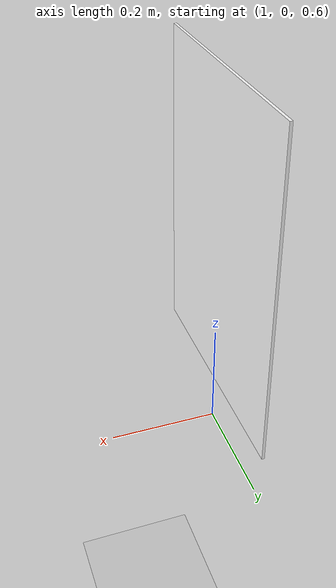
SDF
<?xml version="1.0"?>
<sdf version="1.6">
  <world name="default">
    <!-- physics engine -->
    <physics type="ode">
      <max_step_size>0.001</max_step_size>
      <real_time_factor>1</real_time_factor>
      <real_time_update_rate>1000</real_time_update_rate>
      <magnetic_field>34 0 -36</magnetic_field>
      <gravity>0 0 -9.8</gravity>
    </physics>

    <!-- coordinate -->
    <spherical_coordinates>
      <surface_model>EARTH_WGS84</surface_model>
      <latitude_deg>0</latitude_deg>
      <longitude_deg>0</longitude_deg>
      <elevation>0</elevation>
      <heading_deg>0</heading_deg>
    </spherical_coordinates>

    <!-- A global light source -->
    <scene>
      <sky>
        <clouds>
          <speed>12</speed>
        </clouds>
      </sky>
    </scene>

    <!-- ground plane -->
    <include>
      <uri>model://ground_plane</uri>
    </include>

    <!-- sun -->
    <include>
      <uri>model://sun</uri>
    </include>

    <!-- exp_board -->
    <include>
      <uri>model://exp_board</uri>
      <name>exp_board_1</name>
      <pose>1 0 1 0 0 0</pose>
    </include>

    <!-- light -->
    <light name="additional_light_x" type="directional">
      <diffuse>0.7 0.7 0.7 1</diffuse>
      <specular>0.1 0.1 0.1 1</specular>
      <direction>1.0 0 0</direction>
      <attenuation>
	<range>100</range>
	<constant>0.5</constant>
	<linear>0.01</linear>
	<quadratic>0.001</quadratic>
      </attenuation>
    </light>
  </world>
</sdf>

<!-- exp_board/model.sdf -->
<sdf version="1.6">
<model name="exp_board">
  <static>true</static>

  <link name="link">

    <collision name="collision">
      <geometry>
        <box>
          <size>0.005 0.45 0.6</size>
        </box>
      </geometry>
    </collision>

    <visual name="visual">
      <geometry>
        <box>
          <size>0.005 0.45 0.6</size>
        </box>
      </geometry>
      <material>
        <ambient>1.0 1.0 1.0 1</ambient>
        <diffuse>1.0 1.0 1.0 1</diffuse>
      </material>
    </visual>

    <visual name="center_patch_visual">
      <pose>-0.003 0 0 0 0 0</pose>
      <geometry>
        <box>
          <size>0.001 0.04 0.04</size>
        </box>
      </geometry>
      <material>
        <ambient>0 0 0 1</ambient>
        <diffuse>0 0 0 1</diffuse>
      </material>
    </visual>

    <visual name="center_hole_visual">
      <pose>-0.004 0 0 0 1.57 0</pose>
      <geometry>
        <cylinder>
          <radius>0.005</radius>
	  <length>0.001</length>
        </cylinder>
      </geometry>
      <material>
        <ambient>1 1 1 1</ambient>
        <diffuse>1 1 1 1</diffuse>
      </material>
    </visual>

  </link>
</model>
</sdf>
